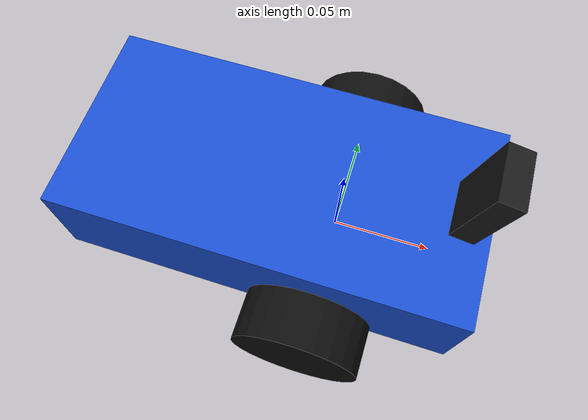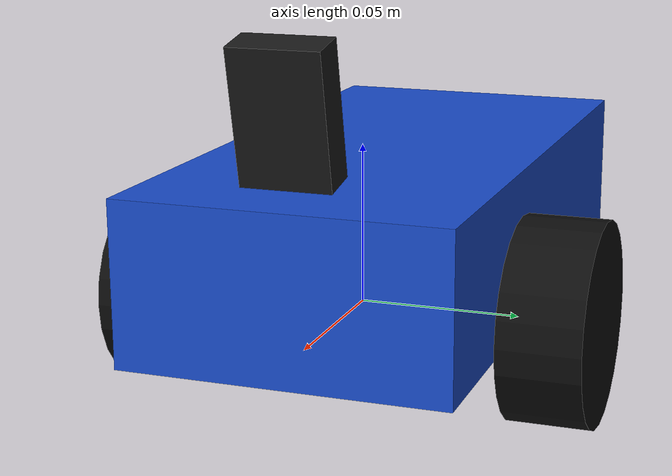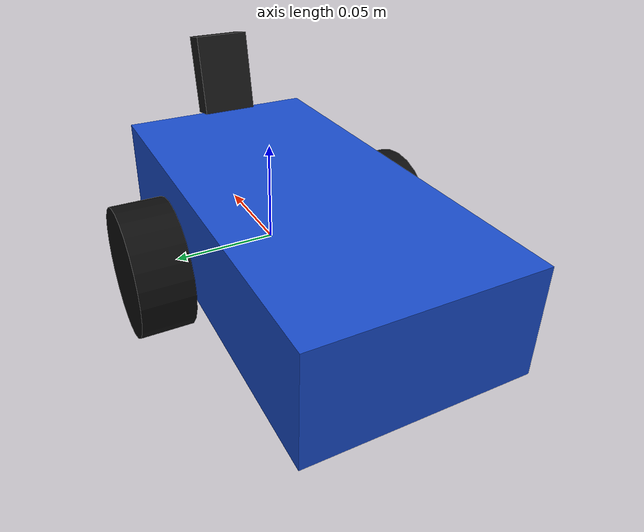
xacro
<?xml version="1.0"?>
<robot name="course_robot" xmlns:xacro="http://www.ros.org/wiki/xacro">

  <!-- ===== Dimensions (meters, kilograms) ===== -->
  <xacro:property name="wheel_radius" value="0.03175"/>      <!-- 2.5 in diameter -->
  <xacro:property name="wheel_width" value="0.0254"/>        <!-- 1 in -->
  <xacro:property name="wheel_separation" value="0.127"/>    <!-- 5 in, center to center -->
  <xacro:property name="wheel_mass" value="0.05"/>
  <xacro:property name="chassis_length" value="0.20"/>
  <xacro:property name="chassis_width" value="0.10"/>
  <xacro:property name="chassis_height" value="0.05"/>
  <xacro:property name="chassis_mass" value="0.60"/>
  <xacro:property name="chassis_x" value="-0.03"/>
  <xacro:property name="chassis_z" value="0.02"/>
  <xacro:property name="caster_radius" value="0.0159"/>
  <xacro:property name="caster_x" value="-0.10"/>

  <xacro:macro name="box_inertia" params="m x y z">
    <inertia ixx="${m*(y*y+z*z)/12}" ixy="0" ixz="0"
             iyy="${m*(x*x+z*z)/12}" iyz="0" izz="${m*(x*x+y*y)/12}"/>
  </xacro:macro>
  <xacro:macro name="cylinder_inertia" params="m r h">
    <inertia ixx="${m*(3*r*r+h*h)/12}" ixy="0" ixz="0"
             iyy="${m*(3*r*r+h*h)/12}" iyz="0" izz="${m*r*r/2}"/>
  </xacro:macro>

  <!-- ===== Chassis: base_link is the midpoint between the wheel axles ===== -->
  <link name="base_link">
    <visual>
      <origin xyz="${chassis_x} 0 ${chassis_z}"/>
      <geometry><box size="${chassis_length} ${chassis_width} ${chassis_height}"/></geometry>
      <material name="chassis_blue"><color rgba="0.1 0.3 0.8 1"/></material>
    </visual>
    <collision>
      <origin xyz="${chassis_x} 0 ${chassis_z}"/>
      <geometry><box size="${chassis_length} ${chassis_width} ${chassis_height}"/></geometry>
    </collision>
    <inertial>
      <origin xyz="${chassis_x} 0 ${chassis_z}"/>
      <mass value="${chassis_mass}"/>
      <xacro:box_inertia m="${chassis_mass}" x="${chassis_length}" y="${chassis_width}" z="${chassis_height}"/>
    </inertial>
  </link>

  <!-- ===== Drive wheels ===== -->
  <xacro:macro name="drive_wheel" params="side y_sign">
    <link name="${side}_wheel_link">
      <visual>
        <geometry><cylinder radius="${wheel_radius}" length="${wheel_width}"/></geometry>
        <material name="tire_black"><color rgba="0.05 0.05 0.05 1"/></material>
      </visual>
      <!-- A sphere touches the ground at one point, like a real tire -->
      <collision>
        <geometry><sphere radius="${wheel_radius}"/></geometry>
      </collision>
      <inertial>
        <mass value="${wheel_mass}"/>
        <xacro:cylinder_inertia m="${wheel_mass}" r="${wheel_radius}" h="${wheel_width}"/>
      </inertial>
    </link>
    <joint name="${side}_wheel_joint" type="continuous">
      <parent link="base_link"/>
      <child link="${side}_wheel_link"/>
      <origin xyz="0 ${y_sign*wheel_separation/2} 0" rpy="${-pi/2} 0 0"/>
      <axis xyz="0 0 1"/>
    </joint>
    <gazebo reference="${side}_wheel_link">
      <mu1>1.0</mu1>
      <mu2>1.0</mu2>
    </gazebo>
  </xacro:macro>
  <xacro:drive_wheel side="left" y_sign="1"/>
  <xacro:drive_wheel side="right" y_sign="-1"/>

  <!-- ===== Ball caster (no friction) ===== -->
  <link name="caster_link">
    <visual>
      <geometry><sphere radius="${caster_radius}"/></geometry>
      <material name="caster_gray"><color rgba="0.6 0.6 0.6 1"/></material>
    </visual>
    <collision>
      <geometry><sphere radius="${caster_radius}"/></geometry>
    </collision>
    <inertial>
      <mass value="0.01"/>
      <inertia ixx="1e-6" ixy="0" ixz="0" iyy="1e-6" iyz="0" izz="1e-6"/>
    </inertial>
  </link>
  <joint name="caster_joint" type="fixed">
    <parent link="base_link"/>
    <child link="caster_link"/>
    <origin xyz="${caster_x} 0 ${caster_radius - wheel_radius}"/>
  </joint>
  <gazebo reference="caster_link">
    <mu1>0.0</mu1>
    <mu2>0.0</mu2>
  </gazebo>

  <link name="imu_link">
    <visual>
      <geometry><box size="0.027 0.020 0.004"/></geometry>
      <material name="imu_purple"><color rgba="0.5 0.1 0.6 1"/></material>
    </visual>
    <inertial>
      <mass value="0.003"/>
      <inertia ixx="1e-7" ixy="0" ixz="0" iyy="1e-7" iyz="0" izz="1e-7"/>
    </inertial>
  </link>
  <joint name="imu_joint" type="fixed">
    <parent link="base_link"/>
    <child link="imu_link"/>
    <origin xyz="0 0 0.04"/>
  </joint>
  <gazebo reference="imu_link">
    <sensor name="bno055" type="imu">
      <always_on>true</always_on>
      <update_rate>50</update_rate>
      <topic>sim/imu</topic>
      <imu>
        <angular_velocity>
          <x><noise type="gaussian"><mean>0</mean><stddev>0.003</stddev></noise></x>
          <y><noise type="gaussian"><mean>0</mean><stddev>0.003</stddev></noise></y>
          <z><noise type="gaussian"><mean>0</mean><stddev>0.003</stddev>
            <bias_mean>0.0005</bias_mean></noise></z>
        </angular_velocity>
        <linear_acceleration>
          <x><noise type="gaussian"><mean>0</mean><stddev>0.05</stddev></noise></x>
          <y><noise type="gaussian"><mean>0</mean><stddev>0.05</stddev></noise></y>
          <z><noise type="gaussian"><mean>0</mean><stddev>0.05</stddev></noise></z>
        </linear_acceleration>
      </imu>
    </sensor>
  </gazebo>

  <link name="camera_link">
    <visual>
      <geometry><box size="0.012 0.027 0.040"/></geometry>
      <material name="camera_black"><color rgba="0.1 0.1 0.1 1"/></material>
    </visual>
    <inertial>
      <mass value="0.01"/>
      <inertia ixx="1e-6" ixy="0" ixz="0" iyy="1e-6" iyz="0" izz="1e-6"/>
    </inertial>
  </link>
  <joint name="camera_joint" type="fixed">
    <parent link="base_link"/>
    <child link="camera_link"/>
    <origin xyz="0.06 0 0.07" rpy="0 0.2 0"/>
  </joint>
  <gazebo reference="camera_link">
    <sensor name="esp32cam" type="camera">
      <always_on>true</always_on>
      <!-- 5 photos per second keeps software rendering light -->
      <update_rate>5</update_rate>
      <topic>sim/camera</topic>
      <camera>
        <horizontal_fov>1.15</horizontal_fov>
        <image>
          <width>640</width>
          <height>480</height>
          <format>R8G8B8</format>
        </image>
        <clip>
          <near>0.03</near>
          <far>15</far>
        </clip>
      </camera>
    </sensor>
  </gazebo>

  <!-- ===== ros2_control: diff_drive_controller drives the wheels ===== -->
  <ros2_control name="GazeboSimSystem" type="system">
    <hardware>
      <plugin>gz_ros2_control/GazeboSimSystem</plugin>
    </hardware>
    <joint name="left_wheel_joint">
      <command_interface name="velocity"/>
      <state_interface name="position"/>
      <state_interface name="velocity"/>
    </joint>
    <joint name="right_wheel_joint">
      <command_interface name="velocity"/>
      <state_interface name="position"/>
      <state_interface name="velocity"/>
    </joint>
  </ros2_control>

  <gazebo>
    <plugin filename="gz_ros2_control-system" name="gz_ros2_control::GazeboSimROS2ControlPlugin">
      <parameters>/workspace/sim/config/controllers.yaml</parameters>
      <ros>
        <!-- ROSA and our tools publish plain Twist on /cmd_vel -->
        <remapping>/diff_drive_controller/cmd_vel_unstamped:=/cmd_vel</remapping>
      </ros>
    </plugin>
  </gazebo>

</robot>
